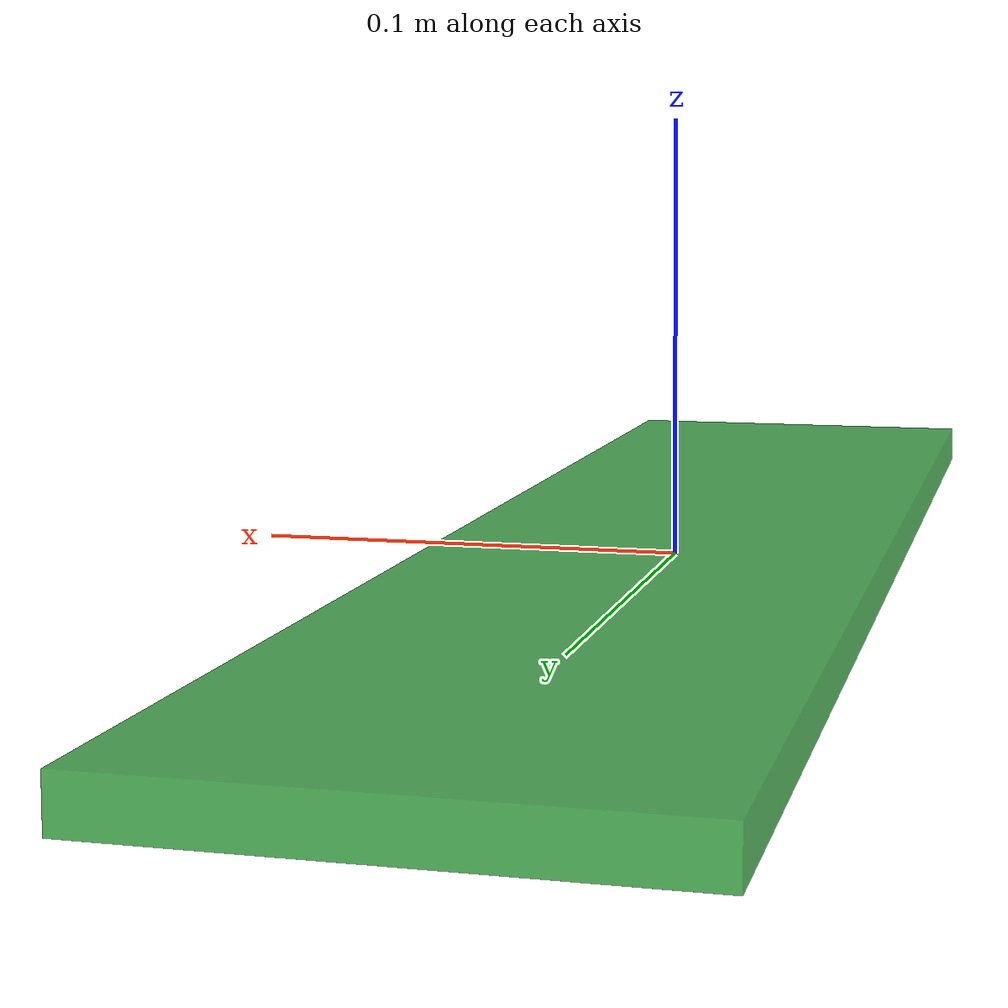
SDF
<sdf version="1.7">
  <model name="safety_green">
    <link name="link">
      <inertial>
        <mass>1</mass>
        <inertia>
          <ixx>0.166667</ixx>
          <ixy>0</ixy>
          <ixz>0</ixz>
          <iyy>0.166667</iyy>
          <iyz>0</iyz>
          <izz>0.166667</izz>
        </inertia>
        <pose>0.6 0.0 0.205 0.0 -0.0 0.0</pose>
      </inertial>
      <self_collide>0</self_collide>
      <enable_wind>0</enable_wind>
      <kinematic>0</kinematic>
      <pose>0 0 0 0 -0 0</pose>
      <gravity>1</gravity>
      <visual name="visual">
        <geometry>
          <box>
<size>0.1 0.4 0.01</size>
</box>
        </geometry>
        <material>
          <script>
            <name>Gazebo/Green</name>
            <uri>file://media/materials/scripts/gazebo.material</uri>
          </script>
          <shader type="pixel">
            <normal_map>__default__</normal_map>
          </shader>
          <ambient>0 1 0 1</ambient>
          <diffuse>0 1 0 1</diffuse>
          <specular>0.1 0.1 0.1 1</specular>
          <emissive>0 0 0 1</emissive>
        </material>
        <pose>0 0 0.00001 0 -0 0</pose>
        <transparency>0.2</transparency>
        <cast_shadows>1</cast_shadows>
      </visual>
    </link>
    <static>1</static>
    <allow_auto_disable>1</allow_auto_disable>
  </model>
</sdf>
